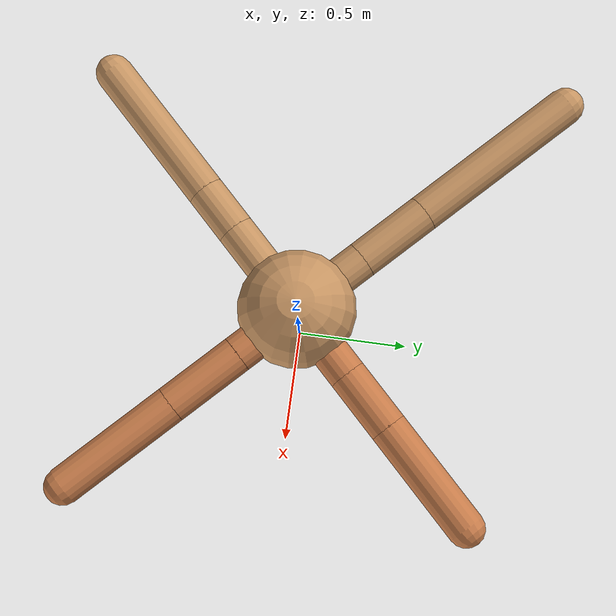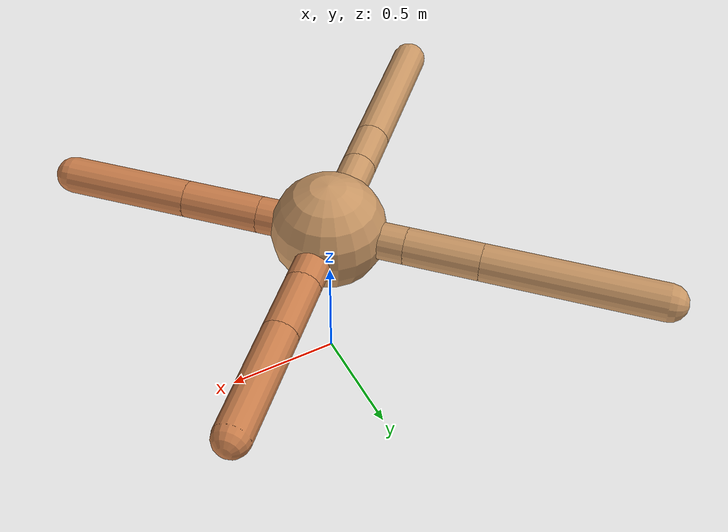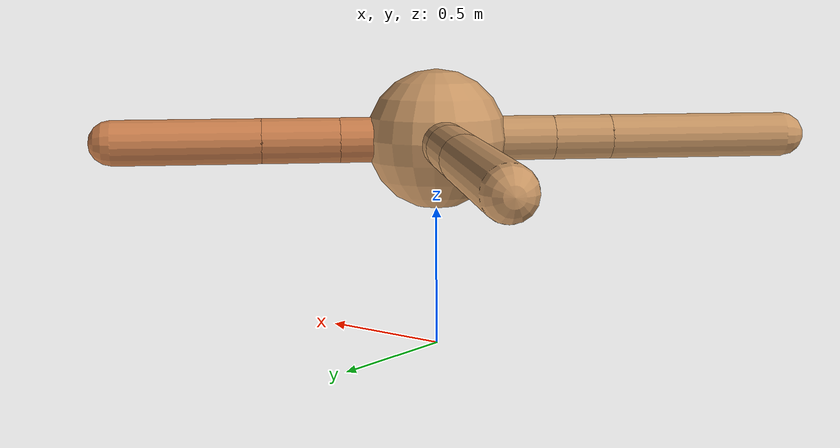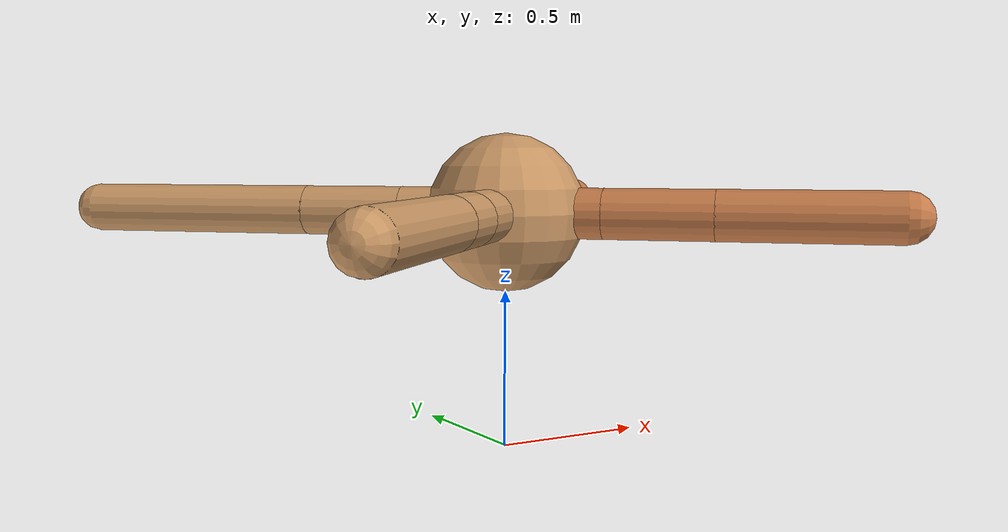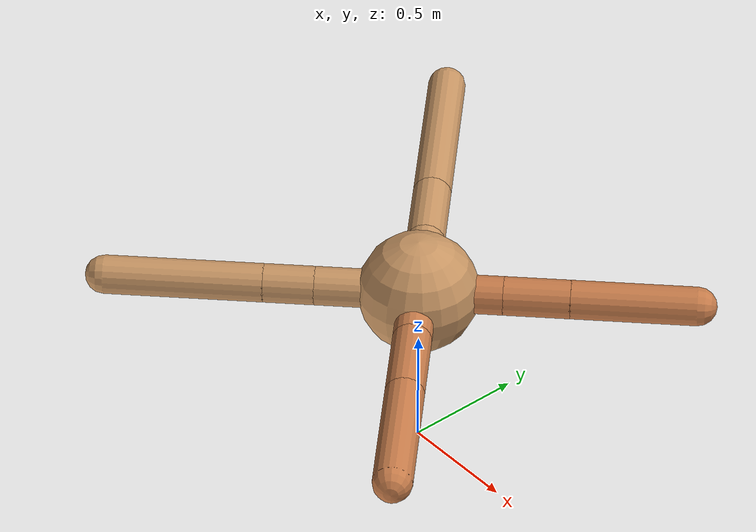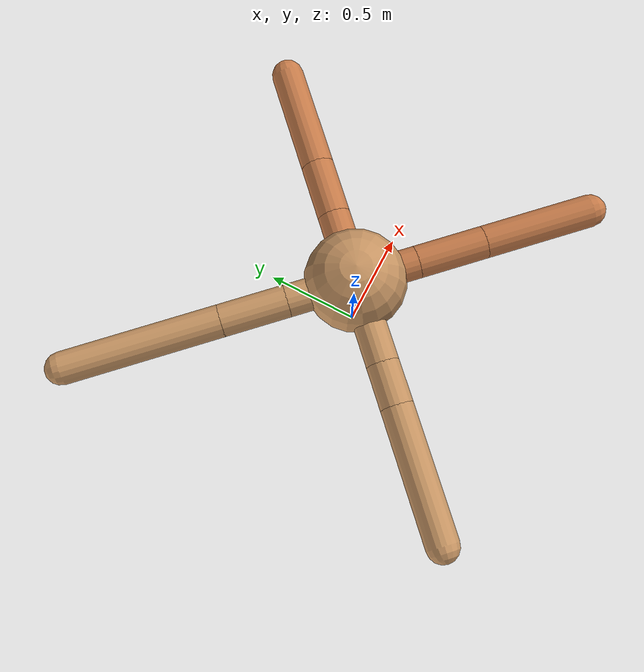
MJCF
<mujoco model="ant">
  <compiler angle="degree" coordinate="local" inertiafromgeom="true" />
  <option integrator="RK4" timestep="0.01" />
  <custom>
    <numeric data="0.0 0.0 0.55 1.0 0.0 0.0 0.0 0.0 1.0 0.0 -1.0 0.0 -1.0 0.0 1.0" name="init_qpos" />
  </custom>
  <default>
    <joint armature="1" damping="1" limited="true" />
    <geom conaffinity="0" condim="3" density="5.0" friction="1.5 0.1 0.1" margin="0.01" rgba="0.8 0.6 0.4 1" />
  </default>
  <worldbody>
    <body name="torso" pos="0 0 0.75">
      <geom name="torso_geom" pos="0 0 0" size="0.25" type="sphere" />

      <body name="front_left_leg" pos="0 0 0">
        <geom fromto="0.0 0.0 0.0 0.24448736670212634 0.24448736670212634 0.0" name="aux_1_geom" size="0.08" type="capsule" rgba=".8 .5 .3 1" />
        <body name="aux_1" pos="0.24448736670212634 0.24448736670212634 0.0">
          <joint axis="0 0 1" name="hip_1" pos="0.0 0.0 0.0" range="-40 40" type="hinge" />
          <geom fromto="0.0 0.0 0.0 0.19358261441416436 0.19358261441416436 0.0" name="left_leg_geom" size="0.08" type="capsule" rgba=".8 .5 .3 1" />
          <body pos="0.19358261441416436 0.19358261441416436 0.0" name="front_left_foot">
            <joint axis="-1 1 0" name="ankle_1" pos="0.0 0.0 0.0" range="30 100" type="hinge" />
            <geom fromto="0.0 0.0 0.0 0.3641750989068908 0.3641750989068908 0.0" name="left_ankle_geom" size="0.08" type="capsule" rgba=".8 .5 .3 1" />
          </body>
        </body>
      </body>
      <body name="front_right_leg" pos="0 0 0">
        <geom fromto="0.0 0.0 0.0 -0.24148221810584009 0.24148221810584009 0.0" name="aux_2_geom" size="0.08" type="capsule" />
        <body name="aux_2" pos="-0.24148221810584009 0.24148221810584009 0.0">
          <joint axis="0 0 1" name="hip_2" pos="0.0 0.0 0.0" range="-40 40" type="hinge" />
          <geom fromto="0.0 0.0 0.0 -0.23073448136356278 0.23073448136356278 0.0" name="right_leg_geom" size="0.08" type="capsule" />
          <body pos="-0.23073448136356278 0.23073448136356278 0.0" name="front_right_foot">
            <joint axis="1 1 0" name="ankle_2" pos="0.0 0.0 0.0" range="-100 -30" type="hinge" />
            <geom fromto="0.0 0.0 0.0 -0.5450077429681612 0.5450077429681612 0.0" name="right_ankle_geom" size="0.08" type="capsule" />
          </body>
        </body>
      </body>
      <body name="left_back_leg" pos="0 0 0">
        <geom fromto="0.0 0.0 0.0 -0.29907979206467855 -0.29907979206467855 0.0" name="aux_3_geom" size="0.08" type="capsule" />
        <body name="aux_3" pos="-0.29907979206467855 -0.29907979206467855 0.0">
          <joint axis="0 0 1" name="hip_3" pos="0.0 0.0 0.0" range="-40 40" type="hinge" />
          <geom fromto="0.0 0.0 0.0 -0.14872430591499383 -0.14872430591499383 0.0" name="back_leg_geom" size="0.08" type="capsule" />
          <body pos="-0.14872430591499383 -0.14872430591499383 0.0" name="left_back_foot">
            <joint axis="-1 1 0" name="ankle_3" pos="0.0 0.0 0.0" range="-100 -30" type="hinge" />
            <geom fromto="0.0 0.0 0.0 -0.46313463707386654 -0.46313463707386654 0.0" name="third_ankle_geom" size="0.08" type="capsule" />
          </body>
        </body>
      </body>
      <body name="right_back_leg" pos="0 0 0">
        <geom fromto="0.0 0.0 0.0 0.21997610838126677 -0.21997610838126677 0.0" name="aux_4_geom" size="0.08" type="capsule" rgba=".8 .5 .3 1" />
        <body name="aux_4" pos="0.21997610838126677 -0.21997610838126677 0.0">
          <joint axis="0 0 1" name="hip_4" pos="0.0 0.0 0.0" range="-40 40" type="hinge" />
          <geom fromto="0.0 0.0 0.0 0.2412782557050712 -0.2412782557050712 0.0" name="rightback_leg_geom" size="0.08" type="capsule" rgba=".8 .5 .3 1" />
          <body pos="0.2412782557050712 -0.2412782557050712 0.0" name="right_back_foot">
            <joint axis="1 1 0" name="ankle_4" pos="0.0 0.0 0.0" range="30 100" type="hinge" />
            <geom fromto="0.0 0.0 0.0 0.38628162886535045 -0.38628162886535045 0.0" name="fourth_ankle_geom" size="0.08" type="capsule" rgba=".8 .5 .3 1" />
          </body>
        </body>
      </body>
    </body>
  </worldbody>
  <actuator>
    <motor ctrllimited="true" ctrlrange="-1.0 1.0" joint="hip_4" gear="150" />
    <motor ctrllimited="true" ctrlrange="-1.0 1.0" joint="ankle_4" gear="150" />
    <motor ctrllimited="true" ctrlrange="-1.0 1.0" joint="hip_1" gear="150" />
    <motor ctrllimited="true" ctrlrange="-1.0 1.0" joint="ankle_1" gear="150" />
    <motor ctrllimited="true" ctrlrange="-1.0 1.0" joint="hip_2" gear="150" />
    <motor ctrllimited="true" ctrlrange="-1.0 1.0" joint="ankle_2" gear="150" />
    <motor ctrllimited="true" ctrlrange="-1.0 1.0" joint="hip_3" gear="150" />
    <motor ctrllimited="true" ctrlrange="-1.0 1.0" joint="ankle_3" gear="150" />
  </actuator>
</mujoco>
